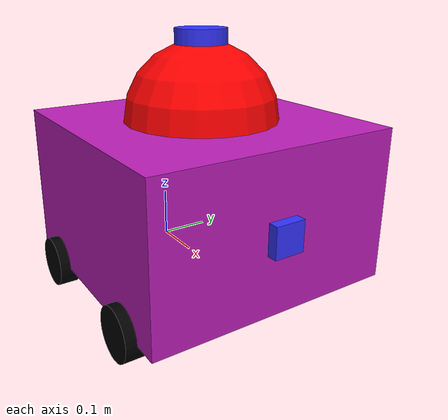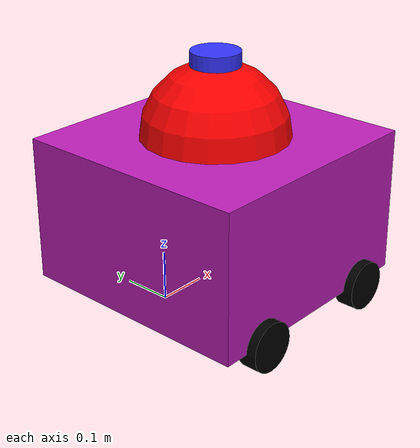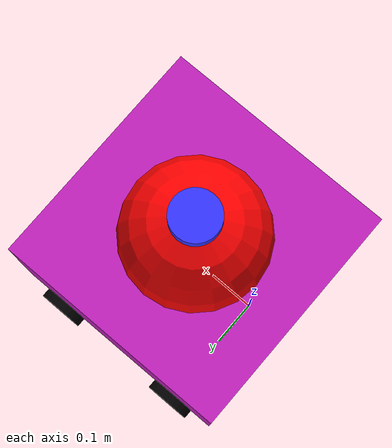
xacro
<?xml version="1.0"?>
<!-- this xacro file is composed with different xacro files -->
<robot xmlns:xacro="http://www.ros.org/wiki/xacro"  name="robot">

    <!-- robot_core.xacro describes robot shape and joints -->
    <xacro:include filename="robot_core.xacro"/>

    <!-- gazebo_control.xacro is a control plugin for gazebo -->
    <xacro:include filename="gazebo_control.xacro"/>

    <!-- lidar.xacro for lidar sensor -->
    <xacro:include filename="lidar.xacro"/>

    <!-- camera.xacro for lidar sensor -->
    <xacro:include filename="camera.xacro"/>

</robot>

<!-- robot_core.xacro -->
<robot xmlns:xacro="http://www.ros.org/wiki/xacro">

    <!-- Include inertial macros for predefined calculations -->
    <xacro:include filename="inertial_macros.xacro"/>

    <!-- Define material color rgba at external files -->
    <xacro:include filename="material_color.xacro"/>

    <!-- Base link is the main coordinate frame -->
    <link name="base_link"/>

    <!-- Chassis Joint -->
    <joint name="chassis_joint" type="fixed">
        <parent link="base_link"/>
        <child link="chassis"/>
        <origin xyz="-0.1 0 0"/>
    </joint>

    <!-- Chassis Link -->
    <link name="chassis">
        <visual>
            <origin xyz="0.25 0 0.15"/>
            <geometry>
                <box size="0.5 0.5 0.3"/>
            </geometry>
            <material name="purple"/>
        </visual>
        <collision>
            <origin xyz="0.25 0 0.15"/>
            <geometry>
                <box size="0.5 0.5 0.3"/>
            </geometry>
        </collision>
        <xacro:inertial_box mass="1.0" x="0.5" y="0.5" z="0.3">
            <origin xyz="0.25 0 0.15" rpy="0 0 0"/>
        </xacro:inertial_box>
    </link>

    <!-- to visualize color attributes in Gazebo simulator-->
    <gazebo reference="chassis">
        <material>Gazebo/Purple</material>
    </gazebo>

    <!-- Four-Wheel Configuration -->

    <!-- Front Left Wheel -->
    <joint name="front_left_wheel_joint" type="continuous">
        <parent link="base_link"/>
        <child link="front_left_wheel"/>
        <origin xyz="0.3 0.25 0" rpy="-${pi/2} 0 0"/>
        <axis xyz="0 0 1"/>
    </joint>

    <link name="front_left_wheel">
        <visual>
            <geometry>
                <cylinder radius="0.05" length="0.04"/>
            </geometry>
            <material name="black"/>
        </visual>
        <collision>
            <geometry>
                <cylinder radius="0.05" length="0.04"/>
            </geometry>
        </collision>
        <xacro:inertial_cylinder mass="0.1" length="0.04" radius="0.05">
            <origin xyz="0 0 0" rpy="0 0 0"/>
        </xacro:inertial_cylinder>
    </link>

    <gazebo reference="front_left_wheel">
        <material>Gazebo/Black</material>
    </gazebo>

    <!-- Front Right Wheel -->
    <joint name="front_right_wheel_joint" type="continuous">
        <parent link="base_link"/>
        <child link="front_right_wheel"/>
        <origin xyz="0.3 -0.25 0" rpy="${pi/2} 0 0"/>
        <axis xyz="0 0 -1"/>
    </joint>

    <link name="front_right_wheel">
        <visual>
            <geometry>
                <cylinder radius="0.05" length="0.04"/>
            </geometry>
            <material name="black"/>
        </visual>
        <collision>
            <geometry>
                <cylinder radius="0.05" length="0.04"/>
            </geometry>
        </collision>
        <xacro:inertial_cylinder mass="0.1" length="0.04" radius="0.05">
            <origin xyz="0 0 0" rpy="0 0 0"/>
        </xacro:inertial_cylinder>
    </link>

    <gazebo reference="front_right_wheel">
        <material>Gazebo/Black</material>
    </gazebo>

    <!-- Rear Left Wheel -->
    <joint name="rear_left_wheel_joint" type="continuous">
        <parent link="base_link"/>
        <child link="rear_left_wheel"/>
        <origin xyz="0 0.25 0" rpy="-${pi/2} 0 0"/>
        <axis xyz="0 0 1"/>
    </joint>

    <link name="rear_left_wheel">
        <visual>
            <geometry>
                <cylinder radius="0.05" length="0.04"/>
            </geometry>
            <material name="black"/>
        </visual>
        <collision>
            <geometry>
                <cylinder radius="0.05" length="0.04"/>
            </geometry>
        </collision>
        <xacro:inertial_cylinder mass="0.1" length="0.04" radius="0.05">
            <origin xyz="0 0 0" rpy="0 0 0"/>
        </xacro:inertial_cylinder>
    </link>

    <gazebo reference="rear_left_wheel">
        <material>Gazebo/Black</material>
    </gazebo>

    <!-- Rear Right Wheel -->
    <joint name="rear_right_wheel_joint" type="continuous">
        <parent link="base_link"/>
        <child link="rear_right_wheel"/>
        <origin xyz="0 -0.25 0" rpy="${pi/2} 0 0"/>
        <axis xyz="0 0 1"/>
    </joint>

    <link name="rear_right_wheel">
        <visual>
            <geometry>
                <cylinder radius="0.05" length="0.04"/>
            </geometry>
            <material name="black"/>
        </visual>
        <collision>
            <geometry>
                <cylinder radius="0.05" length="0.04"/>
            </geometry>
        </collision>
        <xacro:inertial_cylinder mass="0.1" length="0.04" radius="0.05">
            <origin xyz="0 0 0" rpy="0 0 0"/>
        </xacro:inertial_cylinder>
    </link>

    <gazebo reference="rear_right_wheel">
        <material>Gazebo/Black</material>
    </gazebo>

    <!-- TODO: When using prismatic joint, not displayed properly in rviz (w/ gazebo) -->
    <joint name="top_hemisphere_joint" type="fixed">
        <parent link="base_link"/>
        <child link="top_hemisphere"/>
        <origin xyz="0.15 0 0.3"/>
    </joint>

     <!-- Semi-Hemisphere on Top with Sliding X-Direction Capability -->
     <link name="top_hemisphere">
        <visual>
            <origin xyz="0 0 0"/>
            <geometry>
                <sphere radius="0.15"/>
            </geometry>
            <material name="red"/>
        </visual>
        <collision>
            <origin xyz="0 0 0"/>
            <geometry>
                <sphere radius="0.15"/>
            </geometry>
        </collision>
        <xacro:inertial_sphere mass="0.2" radius="0.15">
            <origin xyz="0 0 0" rpy="0 0 0"/>
        </xacro:inertial_sphere>
    </link>

    <gazebo reference="top_hemisphere">
        <material>Gazebo/Red</material>
    </gazebo>

</robot>

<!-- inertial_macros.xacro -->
<!-- From https://github.com/joshnewans/articubot_one/blob/d5aa5e9bc9039073c0d8fd7fe426e170be79c087/description/inertial_macros.xacro-->

<robot xmlns:xacro="http://www.ros.org/wiki/xacro" >

    <!-- Specify some standard inertial calculations https://en.wikipedia.org/wiki/List_of_moments_of_inertia -->
    <!-- These make use of xacro's mathematical functionality -->

    <xacro:macro name="inertial_sphere" params="mass radius *origin">
        <inertial>
            <xacro:insert_block name="origin"/>
            <mass value="${mass}" />
            <inertia ixx="${(2/5) * mass * (radius*radius)}" ixy="0.0" ixz="0.0"
                    iyy="${(2/5) * mass * (radius*radius)}" iyz="0.0"
                    izz="${(2/5) * mass * (radius*radius)}" />
        </inertial>
    </xacro:macro>

    <xacro:macro name="inertial_box" params="mass x y z *origin">
        <inertial>
            <xacro:insert_block name="origin"/>
            <mass value="${mass}" />
            <inertia ixx="${(1/12) * mass * (y*y+z*z)}" ixy="0.0" ixz="0.0"
                    iyy="${(1/12) * mass * (x*x+z*z)}" iyz="0.0"
                    izz="${(1/12) * mass * (x*x+y*y)}" />
        </inertial>
    </xacro:macro>

    <xacro:macro name="inertial_cylinder" params="mass length radius *origin">
        <inertial>
            <xacro:insert_block name="origin"/>
            <mass value="${mass}" />
            <inertia ixx="${(1/12) * mass * (3*radius*radius + length*length)}" ixy="0.0" ixz="0.0"
                    iyy="${(1/12) * mass * (3*radius*radius + length*length)}" iyz="0.0"
                    izz="${(1/2) * mass * (radius*radius)}" />
        </inertial>
    </xacro:macro>

</robot>

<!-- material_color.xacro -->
<robot xmlns:xacro="http://www.ros.org/wiki/xacro" >

    <!-- Define materials -->
    <material name="white">
        <color rgba="1 1 1 1"/>
    </material>

    <material name="orange">
        <color rgba="1 0.3 0.1 1"/>
    </material>

    <material name="blue">
        <color rgba="0.2 0.2 1 1"/>
    </material>

    <material name="black">
        <color rgba="0 0 0 1"/>
    </material>

    <material name="red">
        <color rgba="1 0 0 1"/>
    </material>

    <material name="purple">
        <color rgba="0.749 0.122 0.729 1"/>
    </material>

</robot>

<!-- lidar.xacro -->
<robot xmlns:xacro="http://www.ros.org/wiki/xacro">

    <joint name="laser_joint" type="fixed">
        <parent link="top_hemisphere"/> <!-- laser frame attached to top_hemisphere link-->
        <child link="laser_frame"/>
        <origin xyz="0 0 0.15" rpy="0 0 0"/>
    </joint>

    <link name="laser_frame">
        <visual>
            <geometry>
                <cylinder radius="0.05" length="0.04"/>
            </geometry>
            <material name="blue"/>
        </visual>
        <collision>
            <geometry>
                <cylinder radius="0.05" length="0.04"/>
            </geometry>
        </collision>
        <xacro:inertial_cylinder mass="0.1" length="0.04" radius="0.05">
            <origin xyz="0 0 0" rpy="0 0 0"/>
        </xacro:inertial_cylinder>
    </link>

    <gazebo reference="laser_frame">
        <material>Gazebo/Blue</material>

        <sensor name="laser" type="ray">
            <pose> 0 0 0 0 0 0 </pose>
            <visualize>true</visualize>
            <update_rate>10</update_rate>
            <ray>
                <scan>
                    <horizontal>
                        <samples>180</samples>
                        <min_angle>-3.14</min_angle>
                        <max_angle>3.14</max_angle>
                    </horizontal>
                </scan>
                <range>
                    <min>0.3</min>
                    <max>6.0</max>
                </range>
            </ray>
            <plugin name="laser_controller" filename="libgazebo_ros_ray_sensor.so">
                <ros>
                    <argument>~/out:=scan</argument> <!-- what topic to publish? topic name is scan-->
                </ros>
                <output_type>sensor_msgs/LaserScan</output_type>
                <frame_name>laser_frame</frame_name> <!-- TF frame name -->
                <update_rate>10</update_rate>  <!-- Reduced from 100 Hz to 20 Hz -->
                <queue_size>200</queue_size>   <!-- Increased queue size to handle more messages -->
            </plugin>
        </sensor>
    </gazebo>

</robot>

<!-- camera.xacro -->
<robot xmlns:xacro="http://www.ros.org/wiki/xacro">

    <joint name="camera_joint" type="fixed">
        <parent link="chassis"/>
        <child link="camera_link"/>
        <origin xyz="0.505 0 0.15" rpy="0 0 0"/>
    </joint>

    <link name="camera_link">
        <visual>
            <geometry>
                <box size="0.03 0.06 0.06"/>
            </geometry>
            <material name="blue"/>
        </visual>
    </link>

    <!-- ROS coordinate system: (x, y, z) = (forward, left, up)-->
    <!-- alias joint and link to convert ROS coordinate system to image coordinate system using rpy attributes-->
    <joint name="camera_optical_joint" type="fixed">
        <parent link="camera_link"/>
        <child link="camera_link_optical"/>
        <origin xyz="0 0 0" rpy="${-pi/2} 0 ${-pi/2}"/>
    </joint>

    <!-- dummy link following image coordinate systems : (x, y, z) = (right, down, inward)-->
    <link name="camera_link_optical"></link>

    <gazebo reference="camera_link">
        <material>Gazebo/Blue</material>
        <sensor name="camera" type="camera">
            <pose> 0 0 0 0 0 0 </pose>
            <visualize>true</visualize>
            <update_rate>10</update_rate>
            <camera>
                <horizontal_fov>1.089</horizontal_fov> <!-- similar to pi camera -->
                <image>
                    <format>R8G8B8</format> <!-- 8-bit RGB -->
                    <width>640</width>
                    <height>480</height>
                </image>
                <clip>
                    <near>0.05</near>
                    <far>8.0</far>
                </clip>
            </camera>
            <plugin name="camera_controller" filename="libgazebo_ros_camera.so">
                <frame_name>camera_link_optical</frame_name> <!-- published image data is related to camaer_link_optocal link -->
            </plugin>
        </sensor>
    </gazebo>

</robot>
